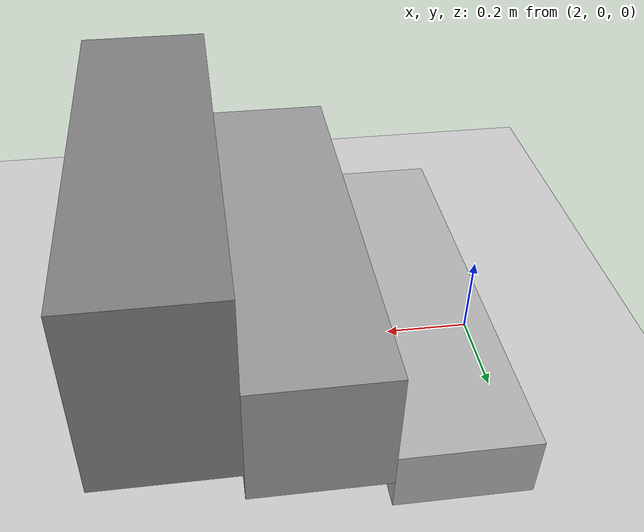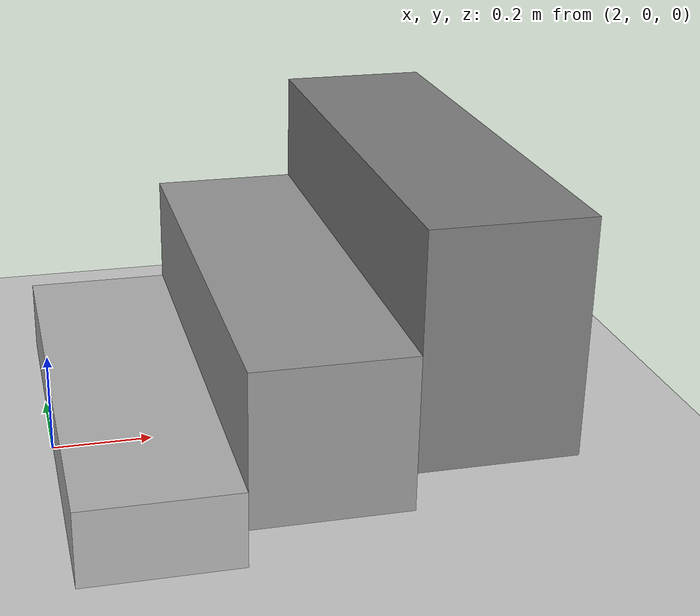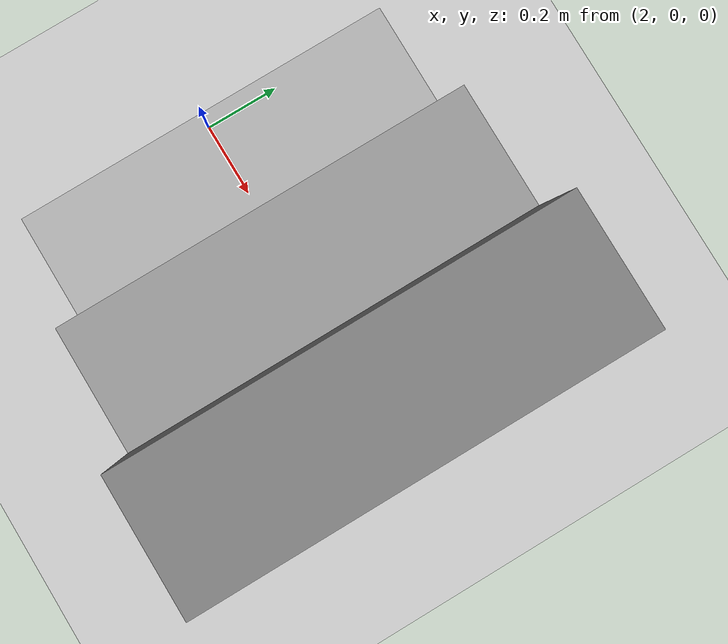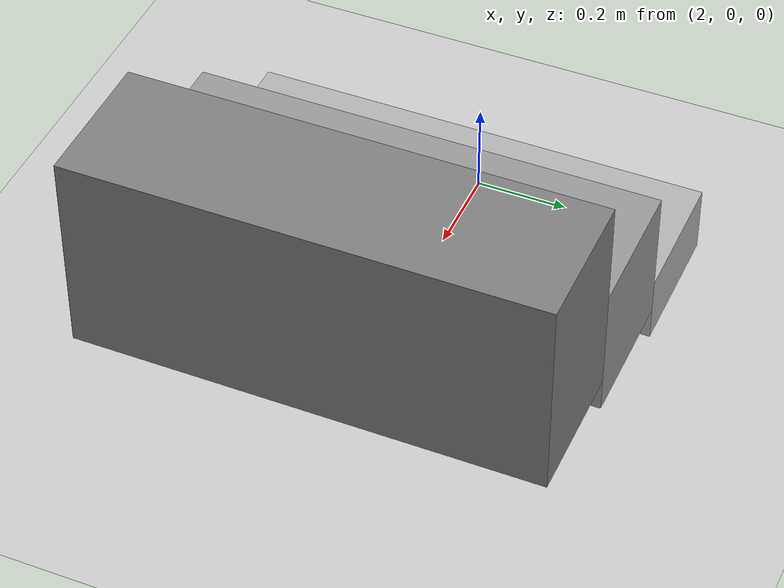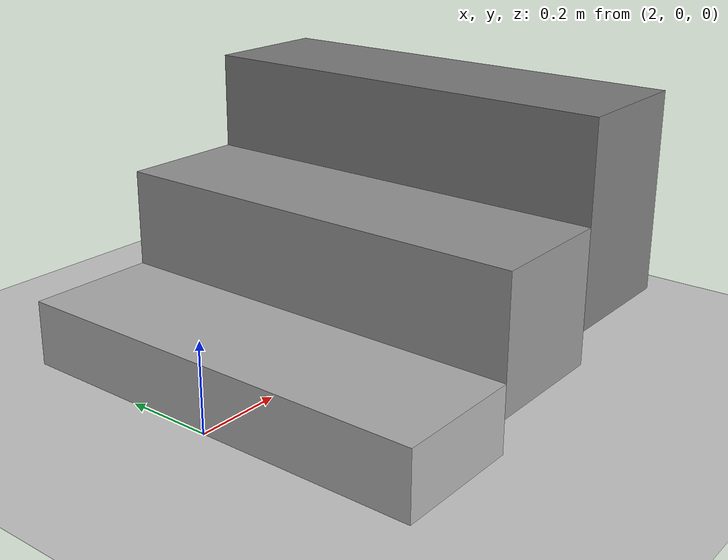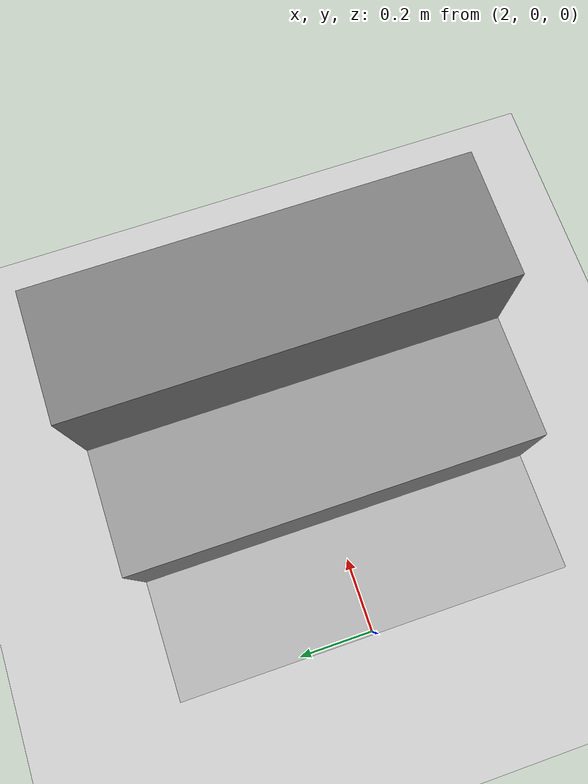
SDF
<?xml version="1.0" ?>

<sdf version="1.6">
  <world name="stair_world">
    <physics name="1ms" type="ignored">
      <max_step_size>0.001</max_step_size>
      <real_time_factor>1.0</real_time_factor>
    </physics>

    <plugin filename="gz-sim-physics-system" name="gz::sim::systems::Physics"/>
    <plugin filename="gz-sim-user-commands-system" name="gz::sim::systems::UserCommands"/>
    <plugin filename="gz-sim-scene-broadcaster-system" name="gz::sim::systems::SceneBroadcaster"/>

    <light type="directional" name="sun">
      <cast_shadows>true</cast_shadows>
      <pose>0 0 10 0 0 0</pose>
      <diffuse>0.8 0.8 0.8 1</diffuse>
      <specular>0.2 0.2 0.2 1</specular>
      <direction>-0.5 0.1 -0.9</direction>
    </light>

    <model name="ground_plane">
      <static>true</static>
      <link name="link">
        <collision name="collision">
          <geometry>
            <plane>
              <normal>0 0 1</normal>
              <size>100 100</size>
            </plane>
          </geometry>
        </collision>
        <visual name="visual">
          <geometry>
            <plane>
              <normal>0 0 1</normal>
              <size>100 100</size>
            </plane>
          </geometry>
          <material>
            <ambient>0.8 0.8 0.8 1</ambient>
            <diffuse>0.8 0.8 0.8 1</diffuse>
            <specular>0.8 0.8 0.8 1</specular>
          </material>
        </visual>
      </link>
    </model>

    <model name="three_steps">
      <static>true</static>
      <pose>2.0 0 0 0 0 0</pose> <link name="step1">
        <pose>0.15 0 0.075 0 0 0</pose>
        <collision name="collision1">
          <geometry><box><size>0.3 1.0 0.15</size></box></geometry>
        </collision>
        <visual name="visual1">
          <geometry><box><size>0.3 1.0 0.15</size></box></geometry>
          <material><ambient>0.3 0.3 0.3 1</ambient><diffuse>0.7 0.7 0.7 1</diffuse></material>
        </visual>
      </link>

      <link name="step2">
        <pose>0.45 0 0.225 0 0 0</pose>
        <collision name="collision2">
          <geometry><box><size>0.3 1.0 0.3</size></box></geometry>
        </collision>
        <visual name="visual2">
          <geometry><box><size>0.3 1.0 0.3</size></box></geometry>
          <material><ambient>0.4 0.4 0.4 1</ambient><diffuse>0.6 0.6 0.6 1</diffuse></material>
        </visual>
      </link>

      <link name="step3">
        <pose>0.75 0 0.375 0 0 0</pose>
        <collision name="collision3">
          <geometry><box><size>0.3 1.0 0.45</size></box></geometry>
        </collision>
        <visual name="visual3">
          <geometry><box><size>0.3 1.0 0.45</size></box></geometry>
          <material><ambient>0.5 0.5 0.5 1</ambient><diffuse>0.5 0.5 0.5 1</diffuse></material>
        </visual>
      </link>
    </model>
  </world>
</sdf>
